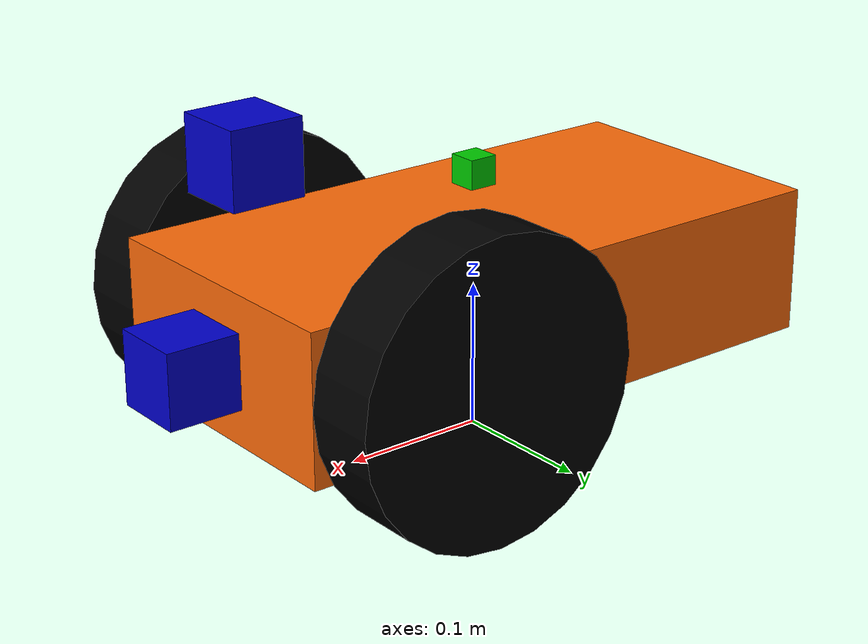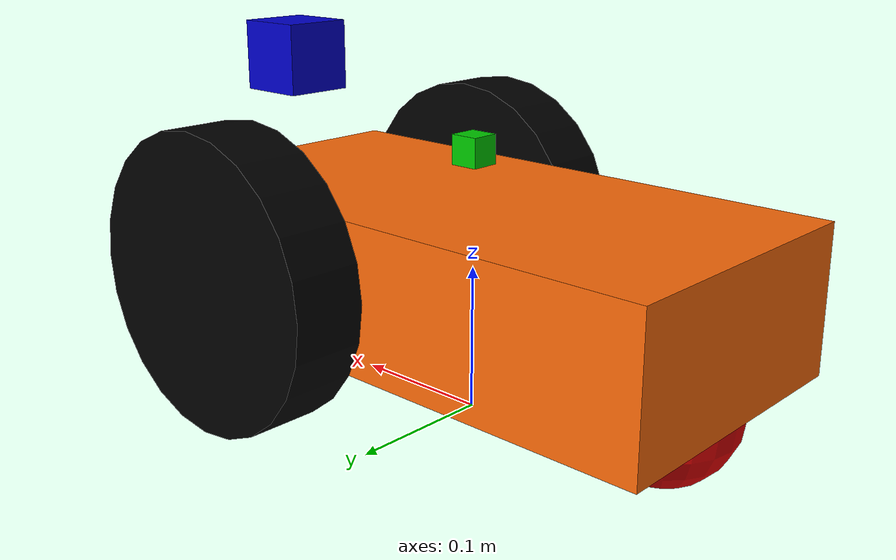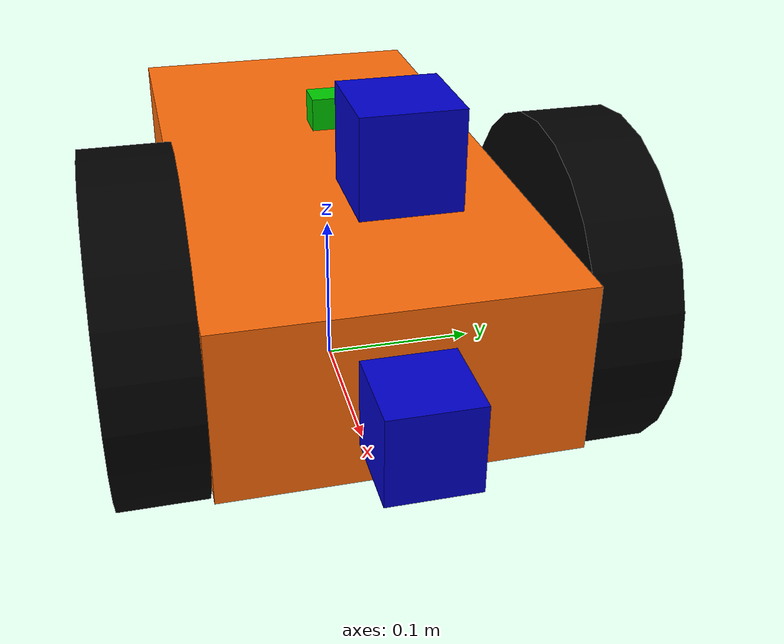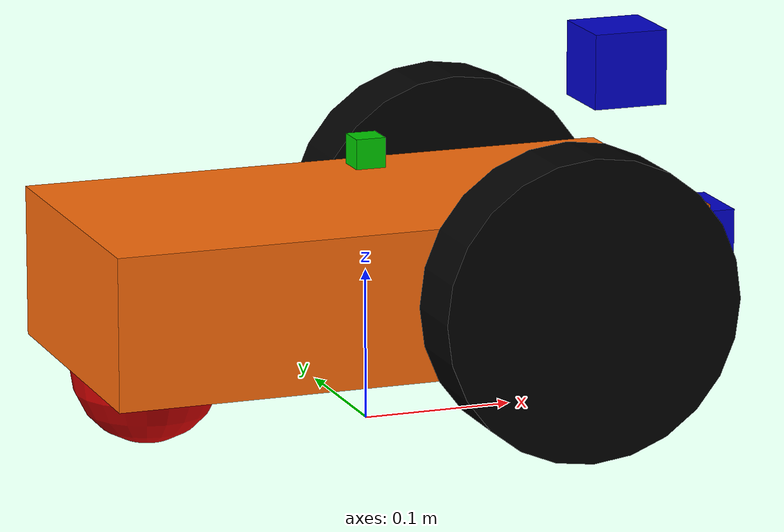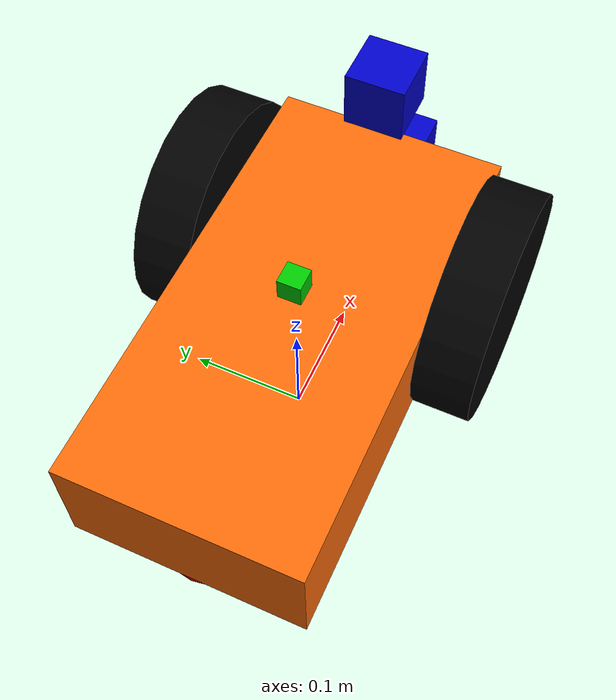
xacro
<?xml version="1.0"?>
<robot name="car" xmlns:xacro="http://www.ros.org/wiki/xacro">

    <xacro:property name="PI" value="3.1415926535897931"/>

    <xacro:property name="chassisHeight" value="0.1"/>
    <xacro:property name="chassisLength" value="0.4"/>
    <xacro:property name="chassisWidth" value="0.2"/>
    <xacro:property name="chassisMass" value="50"/>

    <xacro:property name="casterRadius" value="0.05"/>
    <xacro:property name="casterMass" value="5"/>

    <xacro:property name="wheelWidth" value="0.05"/>
    <xacro:property name="wheelRadius" value="0.1"/>
    <xacro:property name="wheelPos" value="0.2"/>
    <xacro:property name="wheelMass" value="5"/>

    <xacro:property name="cameraSize" value="0.05"/>
    <xacro:property name="cameraMass" value="0.1"/>

    <xacro:property name="laserSize" value="0.05"/>
    <xacro:property name="laserMass" value="0.1"/>

    <xacro:property name="imuSize" value="0.02"/>
    <xacro:property name="imuMass" value="0.01"/>

    <xacro:include filename="$(find car_description)/urdf/car.gazebo" />
    <xacro:include filename="$(find car_description)/urdf/materials.xacro" />
    <xacro:include filename="$(find car_description)/urdf/macros.xacro" />

    <link name="base_footprint" />

    <joint name="base_joint" type="fixed">
      <parent link="base_footprint"/>
      <child link="base_link"/>
    </joint>

    <link name='base_link'>
        <collision>
            <origin xyz="0 0 ${wheelRadius}" rpy="0 0 0"/>
            <geometry>
                <box size="${chassisLength} ${chassisWidth} ${chassisHeight}"/>
            </geometry>
        </collision>
        <visual>
            <origin xyz="0 0 ${wheelRadius}" rpy="0 0 0"/>
            <geometry>
                <box size="${chassisLength} ${chassisWidth} ${chassisHeight}"/>
            </geometry>
            <material name="orange"/>
        </visual>
        <inertial>
            <origin xyz="0 0 ${wheelRadius}" rpy="0 0 0"/>
            <mass value="${chassisMass}"/>
            <box_inertia m="${chassisMass}" x="${chassisLength}" y="${chassisWidth}" z="${chassisHeight}"/>
        </inertial>
    </link>

    <joint name="fixed" type="fixed">
        <parent link="base_link"/>
        <child link="caster_wheel"/>
    </joint>

    <link name="caster_wheel">
        <collision>
            <origin xyz="${casterRadius-chassisLength/2} 0 ${casterRadius-chassisHeight+wheelRadius}" rpy="0 0 0"/>
            <geometry>
                <sphere radius="${casterRadius}"/>
            </geometry>
        </collision>

        <visual>
            <origin xyz="${casterRadius-chassisLength/2} 0 ${casterRadius-chassisHeight+wheelRadius}" rpy="0 0 0"/>
            <geometry>
                <sphere radius="${casterRadius}"/>
            </geometry>
            <material name="red"/>
        </visual>

        <inertial>
            <origin xyz="${casterRadius-chassisLength/2} 0 ${casterRadius-chassisHeight+wheelRadius}" rpy="0 0 0"/>
            <mass value="${casterMass}"/>
            <sphere_inertia m="${casterMass}" r="${casterRadius}"/>
        </inertial>
    </link>

    <wheel lr="left" tY="1"/>
    <wheel lr="right" tY="-1"/>

    <joint name="camera_joint" type="fixed">
        <origin xyz="${cameraSize/2+chassisLength/2} 0 ${wheelRadius}" rpy="0 0 0"/>
        <parent link="base_link"/>
        <child link="camera"/>
    </joint>

    <link name="camera">
        <collision>
            <origin xyz="0 0 0" rpy="0 0 0"/>
            <geometry>
                <box size="${cameraSize} ${cameraSize} ${cameraSize}"/>
            </geometry>
        </collision>

        <visual>
            <origin xyz="0 0 0" rpy="0 0 0"/>
            <geometry>
                <box size="${cameraSize} ${cameraSize} ${cameraSize}"/>
            </geometry>
            <material name="blue"/>
        </visual>

        <inertial>
            <mass value="${cameraMass}"/>
            <origin xyz="0 0 0" rpy="0 0 0"/>
            <box_inertia m="${cameraMass}" x="${cameraSize}" y="${cameraSize}" z="${cameraSize}"/>
        </inertial>
    </link>

    <joint name="imu_joint" type="fixed">
        <origin xyz="0 0 ${wheelRadius + chassisHeight/2 + 1.5*imuSize}" rpy="0 0 0"/>
        <parent link="base_link"/>
        <child link="base_imu_link"/>
    </joint>

    <link name="base_imu_link">
        <collision>
            <origin xyz="0 0 0" rpy="0 0 0"/>
            <geometry>
                <box size="${imuSize} ${imuSize} ${imuSize}"/>
            </geometry>
        </collision>

        <visual>
            <origin xyz="0 0 0" rpy="0 0 0"/>
            <geometry>
                <box size="${imuSize} ${imuSize} ${imuSize}"/>
            </geometry>
            <material name="green"/>
        </visual>

        <inertial>
            <mass value="${imuMass}"/>
            <origin xyz="0 0 0" rpy="0 0 0"/>
            <box_inertia m="${imuMass}" x="${imuSize}" y="${imuSize}" z="${imuSize}"/>
        </inertial>
    </link>

    <joint name="rplidar_joint" type="fixed">
        <origin xyz="${-laserSize/2+chassisLength/2} 0 ${wheelRadius + chassisHeight/2 + 1.5*laserSize}" rpy="0 0 0"/>
        <parent link="base_link"/>
        <child link="laser"/>
    </joint>

    <link name="laser">
        <collision>
            <origin xyz="0 0 0" rpy="0 0 0"/>
            <geometry>
                <box size="${laserSize} ${laserSize} ${laserSize}"/>
            </geometry>
        </collision>

        <visual>
            <origin xyz="0 0 0" rpy="0 0 0"/>
            <geometry>
                <box size="${laserSize} ${laserSize} ${laserSize}"/>
            </geometry>
            <material name="blue"/>
        </visual>

        <inertial>
            <mass value="${laserMass}"/>
            <origin xyz="0 0 0" rpy="0 0 0"/>
            <box_inertia m="${laserMass}" x="${laserSize}" y="${laserSize}" z="${laserSize}"/>
        </inertial>
    </link>
</robot>

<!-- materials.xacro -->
<robot>

    <material name="black">
        <color rgba="0.0 0.0 0.0 1.0"/>
    </material>

    <material name="blue">
        <color rgba="0.0 0.0 0.8 1.0"/>
    </material>

    <material name="green">
        <color rgba="0.0 0.8 0.0 1.0"/>
    </material>

    <material name="grey">
        <color rgba="0.2 0.2 0.2 1.0"/>
    </material>

    <material name="orange">
        <color rgba="${255/255} ${108/255} ${10/255} 1.0"/>
    </material>

    <material name="brown">
        <color rgba="${222/255} ${207/255} ${195/255} 1.0"/>
    </material>

    <material name="red">
        <color rgba="0.8 0.0 0.0 1.0"/>
    </material>

    <material name="white">
        <color rgba="1.0 1.0 1.0 1.0"/>
    </material>
</robot>

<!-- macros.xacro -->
<robot>
    <macro name="cylinder_inertia" params="m r h">
        <inertia ixx="${m*(3*r*r+h*h)/12}" ixy="0" ixz="0"
                 iyy="${m*(3*r*r+h*h)/12}" iyz="0"
                 izz="${m*r*r/2}"/>
    </macro>

    <macro name="box_inertia" params="m x y z">
        <inertia ixx="${m*(y*y+z*z)/12}" ixy="0" ixz="0"
                 iyy="${m*(x*x+z*z)/12}" iyz="0"
                 izz="${m*(x*x+z*z)/12}"/>
    </macro>

    <macro name="sphere_inertia" params="m r">
        <inertia ixx="${2*m*r*r/5}" ixy="0" ixz="0"
                 iyy="${2*m*r*r/5}" iyz="0"
                 izz="${2*m*r*r/5}"/>
    </macro>

    <macro name="wheel" params="lr tY">

        <link name="${lr}_wheel">
            <collision>
                <origin xyz="0 0 0" rpy="0 ${PI/2} ${PI/2}"/>
                <geometry>
                    <cylinder length="${wheelWidth}" radius="${wheelRadius}"/>
                </geometry>
            </collision>

            <visual>
                <origin xyz="0 0 0" rpy="0 ${PI/2} ${PI/2}"/>
                <geometry>
                    <cylinder length="${wheelWidth}" radius="${wheelRadius}"/>
                </geometry>
                <material name="black"/>
            </visual>

            <inertial>
                <origin xyz="0 0 0" rpy="0 ${PI/2} ${PI/2}"/>
                <mass value="${wheelMass}"/>
                <cylinder_inertia m="${wheelMass}" r="${wheelRadius}" h="${wheelWidth}"/>
            </inertial>
        </link>

        <gazebo reference="${lr}_wheel">
            <mu1 value="1.0"/>
            <mu2 value="1.0"/>
            <kp value="10000000.0"/>
            <kd value="1.0"/>
            <fdir1 value="1 0 0"/>
            <material>Gazebo/Black</material>
        </gazebo>

        <joint name="${lr}_wheel_hinge" type="continuous">
            <parent link="base_link"/>
            <child link="${lr}_wheel"/>
            <origin xyz="${+wheelPos-chassisLength/4} ${tY*wheelWidth/2+tY*chassisWidth/2} ${wheelRadius}" rpy="0 0 0"/>
            <axis xyz="0 1 0" rpy="0 0 0"/>
            <limit effort="100" velocity="100"/>
            <joint_properties damping="0.0" friction="0.0"/>
        </joint>

        <transmission name="${lr}_trans">
            <type>transmission_interface/SimpleTransmission</type>
            <joint name="${lr}_wheel_hinge">
                <hardwareInterface>hardware_interface/EffortJointInterface</hardwareInterface>
            </joint>
            <actuator name="${lr}Motor">
                <hardwareInterface>EffortJointInterface</hardwareInterface>
                <mechanicalReduction>10</mechanicalReduction>
            </actuator>
        </transmission>

    </macro>
</robot>
